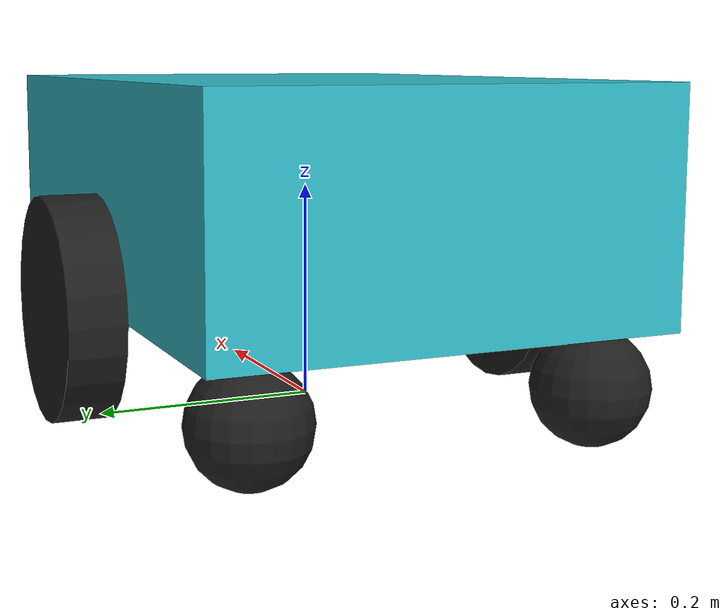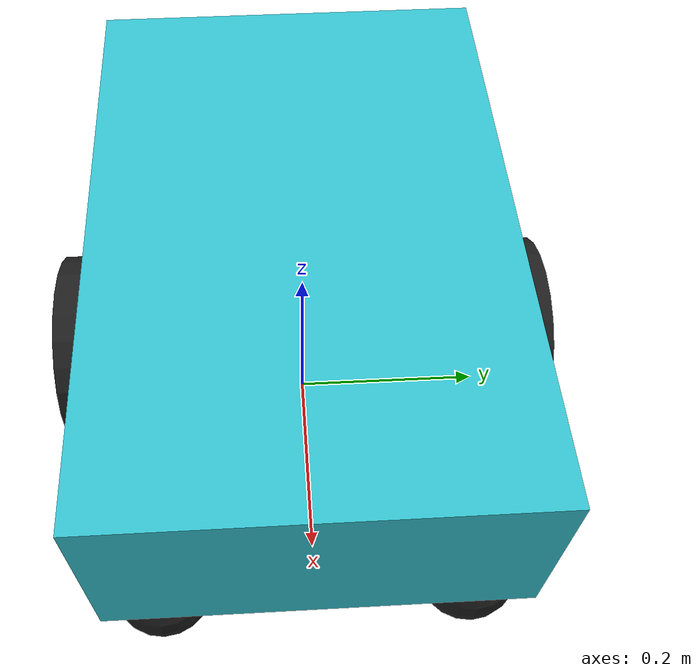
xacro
<?xml version = "1.0"?>
<robot name="my_robot"  xmlns:xacro="http://www.ros.org/wiki/xacro"> <!--basit bir urdf dosyasında tanımlama gerçekleştiremiyorum bunun için xmlns'i de eklemeliyim-->

    <xacro:property name = "base_width" value = "0.6" />
    <xacro:property name = "base_length" value = "0.4" />
    <xacro:property name = "base_height" value = "0.2" />

    <xacro:property name = "wheel_radius" value = "0.1" />
    <xacro:property name = "wheel_length" value = "0.05" />

    <xacro:property name = "caster_wheel_radius" value = "0.05" />

   <xacro:macro name = "wheel_link" params = "prefix" >
        <link name = "${prefix}_wheel_link"><!--bunu aşağıda çağıracağım-->
            <visual>
                <geometry>
                    <cylinder radius = "${wheel_radius}" length = "${wheel_length}"/>
                </geometry>
                <origin xyz = "0 0 0 " rpy = "${pi/2} 0 0" /> <!--bu şekilde bir gösterim ile tekerimi 90 derece döndürmeyi sağlarım-->
                <material name = "black" />
            </visual>

            <collision>
                <geometry>
                    <cylinder radius = "${wheel_radius}" length = "${wheel_length}"/>
                </geometry>
                <origin xyz = "0 0 0 " rpy = "${pi/2} 0 0" /> <!--bu şekilde bir gösterim ile tekerimi 90 derece döndürmeyi sağlarım-->
            </collision>

            <xacro:cylinder_inertia m = "1.0" r = "${2*wheel_radius}"
                                              h = "${2*wheel_length}"
                                              xyz = "0 0 0"
                                              rpy = "${pi/2} 0 0" />
                                              <!--burada da 2* ile genişeltmeler yaparak eylemsilik momentini arttırıp daha stabil bir
                                              durum elde etmiş olurum-->
        </link>
    </xacro:macro>

    <xacro:macro name = "caster_wheel_link" params = "prefix" >
        <link name = "${prefix}_caster_wheel_link" >  <!--bunu aşağıda çağıracağım-->
            <visual>
                <geometry>
                    <sphere radius = "${caster_wheel_radius}" />
                </geometry>
                <origin xyz = "0 0 0 " rpy = "0 0 0" />
                <material name = "black" />
            </visual>

            <collision>
                <geometry>
                    <sphere radius = "${caster_wheel_radius}" />
                </geometry>
                <origin xyz = "0 0 0 " rpy = "0 0 0" />
            </collision>

            <xacro:sphere_inertia m = "0.5" r = "${2*caster_wheel_radius}"
                                            xyz = "0 0 0"
                                            rpy = "0 0 0" /> <!--seçilne kütle değerinin gerçeğe yakın olmasına dikkat etmeliyim-->
                                         <!--burada da 2* ile genişeltmeler yaparak eylemsilikmomentini arttırıp daha stabil bir
                                              durum elde etmiş olurum-->
        </link>
    </xacro:macro>

    <link name = "base_footprint" /> <!--robotu zemindne bir miktar yukarıda tutmak için kullanırım-->

    <link name = "base_link" >
        <visual>
            <geometry>
                <box size = "${base_width} ${base_length} ${base_height}" />  <!--with, length, heigt-->
            </geometry>
            <origin xyz = "0 0 0" rpy = "0 0 0" />
            <material name = "cyan"/>
        </visual>

        <collision>
            <geometry>
                <box size = "${base_width} ${base_length} ${base_height}" />  <!--with, length, heigt-->
            </geometry>
            <origin xyz = "0 0 0" rpy = "0 0 0" />
        </collision>

        <xacro:box_inertia m = "5.0" l = "${2*base_length}"
                                     w = "${2*base_width}"
                                     h = "${2*base_height}"
                                     xyz = "0 0 0"
                                     rpy = "0 0 0" /> <!--xyz konumu ifade ederken rpy oryantasyonu ifade ediyor.-->
                                     <!--bu değerleri bir miktar arttırdığımızda eylemsizlik momenti artacağı için daha stabil bir durum
                                     elde etmiş olurum. 2* genişleterek bu durumu düzeltemiş olurum.-->
    </link>

    <!--prefix'i aşağıdaki satırlar ile çağırıyorum-->
    <xacro:wheel_link prefix = "right" />
    <xacro:wheel_link prefix = "left" />

    <xacro:caster_wheel_link prefix = "pre_right" />
    <xacro:caster_wheel_link prefix = "pre_left" />
    <xacro:caster_wheel_link prefix = "back_right" />
    <xacro:caster_wheel_link prefix = "back_left" />

    <joint name = "base_joint" type = "fixed">
        <parent link = "base_footprint" />
        <child link = "base_link" />
        <origin xyz = "0 0 ${(base_height / 2) + wheel_radius}" rpy = "0 0 0" />
    </joint>

    <joint name = "base_right_wheel_joint" type = "continuous">
        <parent link = "base_link" />
        <child link = "right_wheel_link" />
        <origin xyz = "${- (base_height / 2) + (wheel_radius) }
                       ${-((base_length / 2) + (wheel_length / 2))}
                       ${- wheel_radius}"
                       rpy = "0 0 0" />  <!--aşağı yönde kaydırdığım için - yazdım-->
        <axis xyz = "0 1 0"/>   <!--tekerleğimin istediğim yönde dönmesi için y ekseni etrafında dönmesine izin vermeliyim.
        continuous tipi eklem kullanıyorsam onun döneceği ekseni tanımlamam gerekiyordu. -->
    </joint>

    <joint name = "base_left_wheel_joint" type = "continuous">
        <parent link = "base_link" />
        <child link = "left_wheel_link" />
        <origin xyz = "${- (base_height / 2) + (wheel_radius) }
                       ${((base_length / 2) + (wheel_length / 2))}
                       ${- wheel_radius}"
                       rpy = "0 0 0" />  <!--aşağı yönde kaydırdığım için - yazdım-->
        <axis xyz = "0 1 0"/>   <!--tekerleğimin istediğim yönde dönmesi için y ekseni etrafında dönmesine izin vermeliyim.
        continuous tipi eklem kullanıyorsam onun döneceği ekseni tanımlamam gerekiyordu. -->
    </joint>

    <joint name = "base_pre_right_caster_wheel_joint" type = "continuous">
        <parent link = "base_link" />
        <child link = "pre_right_caster_wheel_link" />
        <origin xyz = "${-(caster_wheel_radius * 6) + (caster_wheel_radius)}
                       ${(base_length / 2) - (caster_wheel_radius)}
                       ${-3 * (caster_wheel_radius)}"
                       rpy = "0 0 0" />  <!--aşağı yönde kaydırdığım için - yazdım-->
        <axis xyz = "0 1 0"/>   <!--tekerleğimin istediğim yönde dönmesi için y ekseni etrafında dönmesine izin vermeliyim.
        continuous tipi eklem kullanıyorsam onun döneceği ekseni tanımlamam gerekiyordu. -->
    </joint>

    <joint name = "base_pre_left_caster_wheel_joint" type = "continuous">
        <parent link = "base_link" />
        <child link = "pre_left_caster_wheel_link" />
        <origin xyz = "${-(caster_wheel_radius * 6) + (caster_wheel_radius)}
                       ${-(base_length / 2) + (caster_wheel_radius)}
                       ${-3 * (caster_wheel_radius)}"
                       rpy = "0 0 0" />  <!--aşağı yönde kaydırdığım için - yazdım-->
        <axis xyz = "0 1 0"/>   <!--tekerleğimin istediğim yönde dönmesi için y ekseni etrafında dönmesine izin vermeliyim.
        continuous tipi eklem kullanıyorsam onun döneceği ekseni tanımlamam gerekiyordu. -->
    </joint>

    <joint name = "base_back_right_caster_wheel_joint" type = "continuous">
        <parent link = "base_link" />
        <child link = "back_right_caster_wheel_link" />
        <origin xyz = "${(caster_wheel_radius * 6) - (caster_wheel_radius)}
                       ${(base_length / 2) - (caster_wheel_radius)}
                       ${-3 * (caster_wheel_radius)}"
                       rpy = "0 0 0" />  <!--aşağı yönde kaydırdığım için - yazdım-->
        <axis xyz = "0 1 0"/>   <!--tekerleğimin istediğim yönde dönmesi için y ekseni etrafında dönmesine izin vermeliyim.
        continuous tipi eklem kullanıyorsam onun döneceği ekseni tanımlamam gerekiyordu. -->
    </joint>

    <joint name = "base_back_left_caster_wheel_joint" type = "continuous">
        <parent link = "base_link" />
        <child link = "back_left_caster_wheel_link" />
        <origin xyz = "${(caster_wheel_radius * 6) - (caster_wheel_radius)}
                       ${-(base_length / 2) + (caster_wheel_radius)}
                       ${-3 * (caster_wheel_radius)}"
                       rpy = "0 0 0" />  <!--aşağı yönde kaydırdığım için - yazdım-->
        <axis xyz = "0 1 0"/>   <!--tekerleğimin istediğim yönde dönmesi için y ekseni etrafında dönmesine izin vermeliyim.
        continuous tipi eklem kullanıyorsam onun döneceği ekseni tanımlamam gerekiyordu. -->
    </joint>
</robot>
